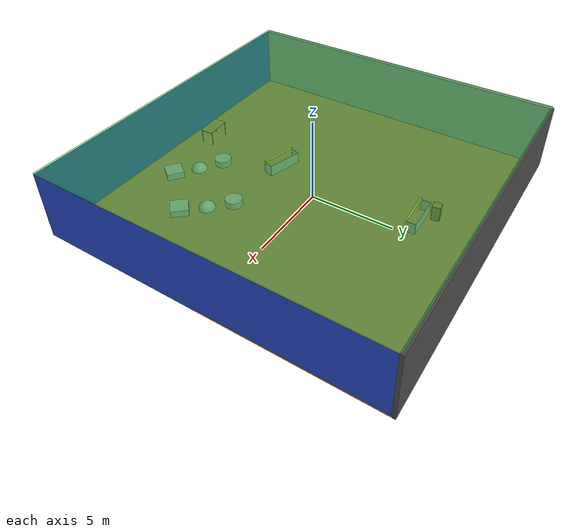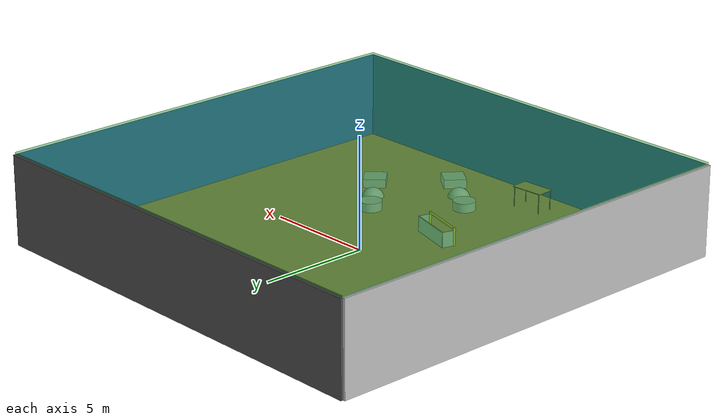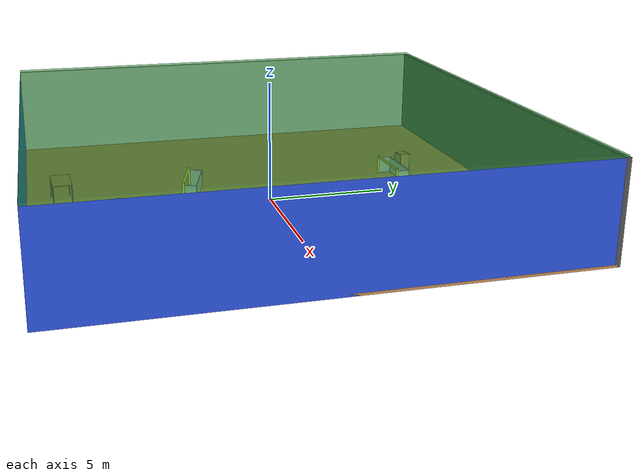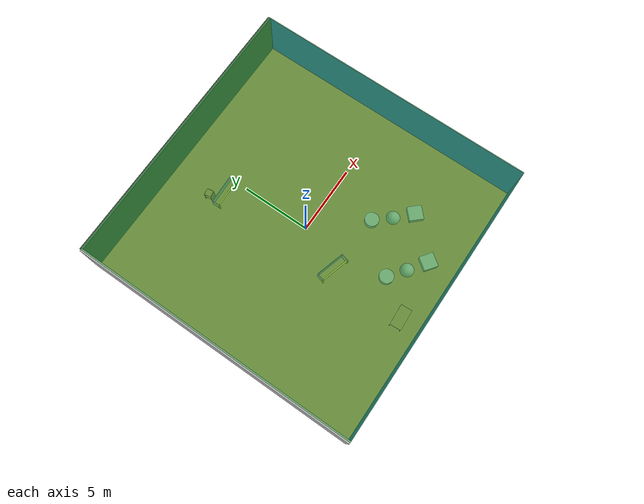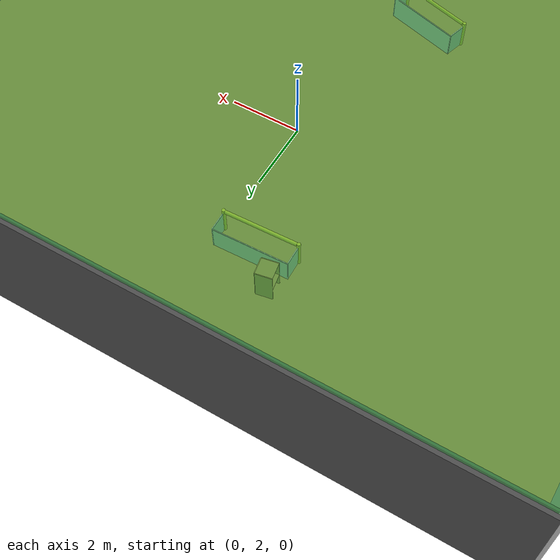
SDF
<sdf version="1.4">
 <world name="default">
  <physics type="ode">
   <max_step_size>0.001</max_step_size>
   <real_time_factor>1</real_time_factor>
   <real_time_update_rate>1000</real_time_update_rate>
   <gravity>0 0 -9.8</gravity>
  </physics>
  <scene><ambient>0.4 0.4 0.4 1</ambient><background>0.7 0.7 0.7 1</background><shadows>1</shadows></scene>
  <model name="Surrounding">
   <static>1</static>
   <link name="Ceiling">
    <collision name="Ceiling_Collision"><geometry><box><size>20 20 0.1</size></box></geometry></collision>
    <visual name="Ceiling_Visual">
     <geometry><box><size>20 20 0.1</size></box></geometry>
     <material>
      <script><uri>file://media/materials/scripts/gazebo.material</uri><name>Gazebo/GreenTransparent</name></script>
     </material>
    </visual>
    <pose>0 0 4.05 0 0 0</pose>
   </link>
   <link name="Wall_South">
    <collision name="Wall_South_Collision">
     <geometry><box><size>20 0 4</size></box></geometry>
     <pose>0 0 2 0 -0 0</pose>
    </collision>
    <visual name="Wall_South_Visual">
     <pose>0 0 2 0 -0 0</pose>
     <geometry><box><size>20 0 4</size></box></geometry>
     <material>
      <script><uri>file://media/materials/scripts/gazebo.material</uri><name>Gazebo/BlueLaser</name></script>
     </material>
    </visual>
    <velocity_decay><linear>0</linear><angular>0</angular></velocity_decay>
    <pose>0 -10 0 0 -0 0</pose>
   </link>
   <link name="Wall_East">
    <collision name="Wall_21_Collision">
     <geometry><box><size>20 0 4</size></box></geometry>
     <pose>0 0 2 0 -0 0</pose>
    </collision>
    <visual name="Wall_21_Visual">
     <pose>0 0 2 0 -0 0</pose>
     <geometry><box><size>20 0 4</size></box></geometry>
     <material>
      <script><uri>file://media/materials/scripts/gazebo.material</uri><name>Gazebo/BlueGlow</name></script>
     </material>
    </visual>
    <velocity_decay><linear>0</linear><angular>0</angular></velocity_decay>
    <pose>10 0 0 0 -0 1.5708</pose>
   </link>
   <link name="Wall_North">
    <collision name="Wall_22_Collision">
     <geometry><box><size>20 0.2 4</size></box></geometry>
     <pose>0 0 2 0 -0 0</pose>
    </collision>
    <visual name="Wall_22_Visual">
     <pose>0 0 2 0 -0 0</pose>
     <geometry><box><size>20 0.2 4</size></box></geometry>
     <material>
      <script><uri>file://media/materials/scripts/gazebo.material</uri><name>Gazebo/Road</name></script>
     </material>
    </visual>
    <velocity_decay><linear>0</linear><angular>0</angular></velocity_decay>
    <pose>0 10 0 0 -0 0</pose>
   </link>
   <link name="Wall_West">
    <collision name="Wall_23_Collision">
     <geometry><box><size>20 0.2 4</size></box></geometry>
     <pose>0 0 2 0 -0 0</pose>
    </collision>
    <visual name="Wall_23_Visual">
     <pose>0 0 2 0 -0 0</pose>
     <geometry><box><size>20 0.2 4</size></box></geometry>
     <material>
      <script><uri>file://media/materials/scripts/gazebo.material</uri><name>Gazebo/CloudySky</name></script>
     </material>
    </visual>
    <velocity_decay><linear>0</linear><angular>0</angular></velocity_decay>
    <pose>-10 0 0 0 0 -1.5708</pose>
   </link>
   <link name="Ground_link">
    <collision name="collision">
     <pose>0 0 .05 0 -0 0</pose>
     <geometry><box><size>20 20 0.1</size></box></geometry>
    </collision>
    <visual name="visual">
     <pose>0 0 .05 0 -0 0</pose>
     <geometry><box><size>20 20 0.1</size></box></geometry>
     <material>
      <script><uri>file://media/materials/scripts/gazebo.material</uri><name>Gazebo/Wood</name></script>
     </material>
    </visual>
   </link>
   <static>1</static>
  </model>
  <spherical_coordinates>
   <surface_model>EARTH_WGS84</surface_model>
   <latitude_deg>0</latitude_deg>
   <longitude_deg>0</longitude_deg>
   <elevation>0</elevation>
   <heading_deg>0</heading_deg>
  </spherical_coordinates>
  <light name="lightball_0" type="diffuse">
   <diffuse>0.8 0.8 0.8 1</diffuse>
   <specular>0.2 0.2 0.2 1</specular>
   <attenuation>
    <range>100</range>
    <constant>0.7</constant>
    <linear>0.01</linear>
    <quadratic>0.001</quadratic>
   </attenuation>
   <direction>-0.5 0.1 -0.9</direction>
   <pose>4.56604057727 -6.40411362368 3.28330056219 0 0 0</pose>
  </light>
  <light name="lightball_1" type="diffuse">
   <diffuse>0.8 0.8 0.8 1</diffuse>
   <specular>0.2 0.2 0.2 1</specular>
   <attenuation>
    <range>100</range>
    <constant>0.7</constant>
    <linear>0.01</linear>
    <quadratic>0.001</quadratic>
   </attenuation>
   <direction>-0.5 0.1 -0.9</direction>
   <pose>-5.41571427149 -2.16780285515 0.887259855863 0 0 0</pose>
  </light>
  <light name="lightball_2" type="diffuse">
   <diffuse>0.8 0.8 0.8 1</diffuse>
   <specular>0.2 0.2 0.2 1</specular>
   <attenuation>
    <range>100</range>
    <constant>0.7</constant>
    <linear>0.01</linear>
    <quadratic>0.001</quadratic>
   </attenuation>
   <direction>-0.5 0.1 -0.9</direction>
   <pose>-0.945022574519 -2.64093937882 2.39004198301 0 0 0</pose>
  </light>
  <light name="lightball_3" type="diffuse">
   <diffuse>0.8 0.8 0.8 1</diffuse>
   <specular>0.2 0.2 0.2 1</specular>
   <attenuation>
    <range>100</range>
    <constant>0.7</constant>
    <linear>0.01</linear>
    <quadratic>0.001</quadratic>
   </attenuation>
   <direction>-0.5 0.1 -0.9</direction>
   <pose>-2.92996847496 -8.58930633972 3.38650804446 0 0 0</pose>
  </light>
  <light name="lightball_4" type="diffuse">
   <diffuse>0.8 0.8 0.8 1</diffuse>
   <specular>0.2 0.2 0.2 1</specular>
   <attenuation>
    <range>100</range>
    <constant>0.7</constant>
    <linear>0.01</linear>
    <quadratic>0.001</quadratic>
   </attenuation>
   <direction>-0.5 0.1 -0.9</direction>
   <pose>-2.35189804736 4.05888513024 1.56646428411 0 0 0</pose>
  </light>
  <light name="lightball_5" type="diffuse">
   <diffuse>0.8 0.8 0.8 1</diffuse>
   <specular>0.2 0.2 0.2 1</specular>
   <attenuation>
    <range>100</range>
    <constant>0.7</constant>
    <linear>0.01</linear>
    <quadratic>0.001</quadratic>
   </attenuation>
   <direction>-0.5 0.1 -0.9</direction>
   <pose>-2.93235293247 -3.74167204089 3.13439879909 0 0 0</pose>
  </light>
  <light name="lightball_6" type="diffuse">
   <diffuse>0.8 0.8 0.8 1</diffuse>
   <specular>0.2 0.2 0.2 1</specular>
   <attenuation>
    <range>100</range>
    <constant>0.7</constant>
    <linear>0.01</linear>
    <quadratic>0.001</quadratic>
   </attenuation>
   <direction>-0.5 0.1 -0.9</direction>
   <pose>0.794217494252 -3.31323637991 1.64809840112 0 0 0</pose>
  </light>
  <light name="lightball_7" type="diffuse">
   <diffuse>0.8 0.8 0.8 1</diffuse>
   <specular>0.2 0.2 0.2 1</specular>
   <attenuation>
    <range>100</range>
    <constant>0.7</constant>
    <linear>0.01</linear>
    <quadratic>0.001</quadratic>
   </attenuation>
   <direction>-0.5 0.1 -0.9</direction>
   <pose>-5.69310799004 -1.6403154251 2.70318217965 0 0 0</pose>
  </light>
  <light name="lightball_8" type="diffuse">
   <diffuse>0.8 0.8 0.8 1</diffuse>
   <specular>0.2 0.2 0.2 1</specular>
   <attenuation>
    <range>100</range>
    <constant>0.7</constant>
    <linear>0.01</linear>
    <quadratic>0.001</quadratic>
   </attenuation>
   <direction>-0.5 0.1 -0.9</direction>
   <pose>3.64845420783 -5.88284678351 1.45883376775 0 0 0</pose>
  </light>
  <light name="lightball_9" type="diffuse">
   <diffuse>0.8 0.8 0.8 1</diffuse>
   <specular>0.2 0.2 0.2 1</specular>
   <attenuation>
    <range>100</range>
    <constant>0.7</constant>
    <linear>0.01</linear>
    <quadratic>0.001</quadratic>
   </attenuation>
   <direction>-0.5 0.1 -0.9</direction>
   <pose>-8.60761343166 -2.68590792871 2.50795349512 0 0 0</pose>
  </light>
  <light name="lightball_10" type="diffuse">
   <diffuse>0.8 0.8 0.8 1</diffuse>
   <specular>0.2 0.2 0.2 1</specular>
   <attenuation>
    <range>100</range>
    <constant>0.7</constant>
    <linear>0.01</linear>
    <quadratic>0.001</quadratic>
   </attenuation>
   <direction>-0.5 0.1 -0.9</direction>
   <pose>5.54236679142 -5.38649939685 0.639537456778 0 0 0</pose>
  </light>
  <light name="lightball_11" type="diffuse">
   <diffuse>0.8 0.8 0.8 1</diffuse>
   <specular>0.2 0.2 0.2 1</specular>
   <attenuation>
    <range>100</range>
    <constant>0.7</constant>
    <linear>0.01</linear>
    <quadratic>0.001</quadratic>
   </attenuation>
   <direction>-0.5 0.1 -0.9</direction>
   <pose>1.70293986623 -3.43680648595 1.96967240719 0 0 0</pose>
  </light>
  <include><uri>model://table</uri><pose>-1.64575131788 -8.56095831575 0 0 0 0.0496904297213</pose></include>
  <include>
   <uri>model://robocup_3Dsim_goal</uri>
   <pose>-1.43091599304 -3.34193171065 0 0 0 1.29126589136</pose>
  </include>
  <include>
   <uri>model://robocup_3Dsim_goal</uri>
   <pose>-1.11656005566 5.69261949408 0 0 0 1.60318484547</pose>
  </include>
  <include><uri>model://cabinet</uri><pose>-1.8996731275 6.69359057251 0 0 0 0.180660008768</pose></include>
  <include>
   <uri>model://textured_shapes</uri>
   <pose>1.45396056734 -7.19522251693 0 0 0 0.944085882525</pose>
  </include>
  <include>
   <uri>model://textured_shapes</uri>
   <pose>4.01197084612 -4.45415056647 0 0 0 0.757270244347</pose>
  </include>
 </world>
</sdf>

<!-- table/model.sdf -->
<sdf version="1.5">
  <model name="table">
    <static>true</static>
    <link name="link">
      <collision name="surface">
        <pose>0 0 1.0 0 0 0</pose>
        <geometry>
          <box>
            <size>1.5 0.8 0.03</size>
          </box>
        </geometry>
        <surface>
          <friction>
            <ode>
              <mu>0.6</mu>
              <mu2>0.6</mu2>
            </ode>
          </friction>
        </surface>
      </collision>
      <visual name="visual1">
        <pose>0 0 1.0 0 0 0</pose>
        <geometry>
          <box>
            <size>1.5 0.8 0.03</size>
          </box>
        </geometry>
        <material>
          <script>
            <uri>model://media/materials/scripts/gazebo.material</uri>
            <name>Gazebo/Wood</name>
          </script>
        </material>
      </visual>
      <collision name="front_left_leg">
        <pose>0.68 0.38 0.5 0 0 0</pose>
        <geometry>
          <cylinder>
            <radius>0.02</radius>
            <length>1.0</length>
          </cylinder>
        </geometry>
      </collision>
      <visual name="front_left_leg">
        <pose>0.68 0.38 0.5 0 0 0</pose>
        <geometry>
          <cylinder>
            <radius>0.02</radius>
            <length>1.0</length>
          </cylinder>
        </geometry>
        <material>
          <script>
            <uri>model://media/materials/scripts/gazebo.material</uri>
            <name>Gazebo/Grey</name>
          </script>
        </material>
      </visual>
      <collision name="front_right_leg">
        <pose>0.68 -0.38 0.5 0 0 0</pose>
        <geometry>
          <cylinder>
            <radius>0.02</radius>
            <length>1.0</length>
          </cylinder>
        </geometry>
      </collision>
      <visual name="front_right_leg">
        <pose>0.68 -0.38 0.5 0 0 0</pose>
        <geometry>
          <cylinder>
            <radius>0.02</radius>
            <length>1.0</length>
          </cylinder>
        </geometry>
        <material>
          <script>
            <uri>model://media/materials/scripts/gazebo.material</uri>
            <name>Gazebo/Grey</name>
          </script>
        </material>
      </visual>
      <collision name="back_right_leg">
        <pose>-0.68 -0.38 0.5 0 0 0</pose>
        <geometry>
          <cylinder>
            <radius>0.02</radius>
            <length>1.0</length>
          </cylinder>
        </geometry>
      </collision>
      <visual name="back_right_leg">
        <pose>-0.68 -0.38 0.5 0 0 0</pose>
        <geometry>
          <cylinder>
            <radius>0.02</radius>
            <length>1.0</length>
          </cylinder>
        </geometry>
        <material>
          <script>
            <uri>model://media/materials/scripts/gazebo.material</uri>
            <name>Gazebo/Grey</name>
          </script>
        </material>
      </visual>
      <collision name="back_left_leg">
        <pose>-0.68 0.38 0.5 0 0 0</pose>
        <geometry>
          <cylinder>
            <radius>0.02</radius>
            <length>1.0</length>
          </cylinder>
        </geometry>
      </collision>
      <visual name="back_left_leg">
        <pose>-0.68 0.38 0.5 0 0 0</pose>
        <geometry>
          <cylinder>
            <radius>0.02</radius>
            <length>1.0</length>
          </cylinder>
        </geometry>
        <material>
          <script>
            <uri>model://media/materials/scripts/gazebo.material</uri>
            <name>Gazebo/Grey</name>
          </script>
        </material>
      </visual>
    </link>
  </model>
</sdf>

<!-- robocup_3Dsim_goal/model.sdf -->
<sdf version="1.5">
  <model name="robocup_3d_goal">
    <static>true</static>
    <link name="left_post">
      <pose>0 1.05 0.45 0 0 0</pose>
      <collision name="collision">
        <geometry>
          <cylinder>
            <radius>0.05</radius>
            <length>0.9</length>
          </cylinder>
        </geometry>
      </collision>
      <visual name="visual">
        <geometry>
          <cylinder>
            <radius>0.05</radius>
            <length>0.9</length>
          </cylinder>
        </geometry>
        <material>
          <script>
            <uri>file://media/materials/scripts/gazebo.material</uri>
            <name>Gazebo/ZincYellow</name>
          </script>
        </material>
      </visual>
    </link>
    <link name="left_support_horiz_lower">
      <pose>0.30 1.05 0.01 0 0 0</pose>
      <collision name="collision">
        <geometry>
          <box>
            <size>0.50 0.02 0.02</size>
          </box>
        </geometry>
      </collision>
      <visual name="visual">
        <geometry>
          <box>
            <size>0.50 0.02 0.02</size>
          </box>
        </geometry>
        <material>
          <script>
            <uri>file://media/materials/scripts/gazebo.material</uri>
            <name>Gazebo/White</name>
          </script>
        </material>
      </visual>
    </link>
    <link name="left_support_horiz_upper">
      <pose>0.30 1.05 0.79 0 0 0</pose>
      <collision name="collision">
        <geometry>
          <box>
            <size>0.50 0.02 0.02</size>
          </box>
        </geometry>
      </collision>
      <visual name="visual">
        <geometry>
          <box>
            <size>0.50 0.02 0.02</size>
          </box>
        </geometry>
        <material>
          <script>
            <uri>file://media/materials/scripts/gazebo.material</uri>
            <name>Gazebo/White</name>
          </script>
        </material>
      </visual>
    </link>
    <link name="left_support_vertical">
      <pose>0.56 1.05 0.4 0 1.5708 0</pose>
      <collision name="collision">
        <geometry>
          <box>
            <size>0.80 0.02 0.02</size>
          </box>
        </geometry>
      </collision>
      <visual name="visual">
        <geometry>
          <box>
            <size>0.80 0.02 0.02</size>
          </box>
        </geometry>
        <material>
          <script>
            <uri>file://media/materials/scripts/gazebo.material</uri>
            <name>Gazebo/White</name>
          </script>
        </material>
      </visual>
    </link>
    <link name="right_support_horiz_lower">
      <pose>0.30 -1.05 0.01 0 0 0</pose>
      <collision name="collision">
        <geometry>
          <box>
            <size>0.50 0.02 0.02</size>
          </box>
        </geometry>
      </collision>
      <visual name="visual">
        <geometry>
          <box>
            <size>0.50 0.02 0.02</size>
          </box>
        </geometry>
        <material>
          <script>
            <uri>file://media/materials/scripts/gazebo.material</uri>
            <name>Gazebo/White</name>
          </script>
        </material>
      </visual>
    </link>
    <link name="right_support_horiz_upper">
      <pose>0.30 -1.05 0.79 0 0 0</pose>
      <collision name="collision">
        <geometry>
          <box>
            <size>0.50 0.02 0.02</size>
          </box>
        </geometry>
      </collision>
      <visual name="visual">
        <geometry>
          <box>
            <size>0.50 0.02 0.02</size>
          </box>
        </geometry>
        <material>
          <script>
            <uri>file://media/materials/scripts/gazebo.material</uri>
            <name>Gazebo/White</name>
          </script>
        </material>
      </visual>
    </link>
    <link name="right_support_vertical">
      <pose>0.56 -1.05 0.4 0 1.5708 0</pose>
      <collision name="collision">
        <geometry>
          <box>
            <size>0.80 0.02 0.02</size>
          </box>
        </geometry>
      </collision>
      <visual name="visual">
        <geometry>
          <box>
            <size>0.80 0.02 0.02</size>
          </box>
        </geometry>
        <material>
          <script>
            <uri>file://media/materials/scripts/gazebo.material</uri>
            <name>Gazebo/White</name>
          </script>
        </material>
      </visual>
    </link>
    <link name="center_support_horiz_lower">
      <pose>0.56 0 0.01 0 1.5708 0</pose>
      <collision name="collision">
        <geometry>
          <box>
            <size>0.02 2.08 0.02</size>
          </box>
        </geometry>
      </collision>
      <visual name="visual">
        <geometry>
          <box>
            <size>0.02 2.08 0.02</size>
          </box>
        </geometry>
        <material>
          <script>
            <uri>file://media/materials/scripts/gazebo.material</uri>
            <name>Gazebo/White</name>
          </script>
        </material>
      </visual>
    </link>
    <link name="center_support_horiz_upper">
      <pose>0.56 0 0.79 0 1.5708 0</pose>
      <collision name="collision">
        <geometry>
          <box>
            <size>0.02 2.08 0.02</size>
          </box>
        </geometry>
      </collision>
      <visual name="visual">
        <geometry>
          <box>
            <size>0.02 2.08 0.02</size>
          </box>
        </geometry>
        <material>
          <script>
            <uri>file://media/materials/scripts/gazebo.material</uri>
            <name>Gazebo/White</name>
          </script>
        </material>
      </visual>
    </link>
    <link name="right_post">
      <pose>0 -1.05 0.45 0 0 0</pose>
      <collision name="collision">
        <geometry>
          <cylinder>
            <radius>0.05</radius>
            <length>0.9</length>
          </cylinder>
        </geometry>
      </collision>
      <visual name="visual">
        <geometry>
          <cylinder>
            <radius>0.05</radius>
            <length>0.9</length>
          </cylinder>
        </geometry>
        <material>
          <script>
            <uri>file://media/materials/scripts/gazebo.material</uri>
            <name>Gazebo/ZincYellow</name>
          </script>
        </material>
      </visual>
    </link>
    <link name="crossbar">
      <pose>0 0 0.85 1.57 1.57 0</pose>
      <collision name="collision">
        <geometry>
          <cylinder>
            <radius>0.05</radius>
            <length>2.0</length>
          </cylinder>
        </geometry>
      </collision>
      <visual name="visual">
        <geometry>
          <cylinder>
            <radius>0.05</radius>
            <length>2.0</length>
          </cylinder>
        </geometry>
        <material>
          <script>
            <uri>file://media/materials/scripts/gazebo.material</uri>
            <name>Gazebo/ZincYellow</name>
          </script>
        </material>
      </visual>
    </link>
    <link name="center_net">
      <pose>0.56 0 0.40 0 0 0</pose>
      <collision name="collision">
        <geometry>
          <box>
            <size>0.01 2.1 0.80</size>
          </box>
        </geometry>
      </collision>
      <visual name="visual">
        <geometry>
          <box>
            <size>0.01 2.1 0.80</size>
          </box>
        </geometry>
        <material>
          <script>
            <uri>model://../model_source/models/robocup09_spl_field/materials/scripts/</uri>
            <uri>model://../model_source/models/robocup09_spl_field/materials/textures/</uri>
            <name>RoboCup/Net</name>
          </script>
        </material>
      </visual>
    </link>
    <link name="left_net">
      <pose>0.30 1.05 0.40 0 0 0</pose>
      <collision name="collision">
        <geometry>
          <box>
            <size>0.50 0.01 0.76</size>
          </box>
        </geometry>
      </collision>
      <visual name="visual">
        <geometry>
          <box>
            <size>0.50 0.01 0.76</size>
          </box>
        </geometry>
        <material>
          <script>
            <uri>model://../model_source/models/robocup09_spl_field/materials/scripts/</uri>
            <uri>model://../model_source/models/robocup09_spl_field/materials/textures/</uri>
            <name>RoboCup/Net</name>
          </script>
        </material>
      </visual>
    </link>
    <link name="right_net">
      <pose>0.30 -1.05 0.40 0 0 0</pose>
      <collision name="collision">
        <geometry>
          <box>
            <size>0.50 0.01 0.76</size>
          </box>
        </geometry>
      </collision>
      <visual name="visual">
        <geometry>
          <box>
            <size>0.50 0.01 0.76</size>
          </box>
        </geometry>
        <material>
          <script>
            <uri>model://../model_source/models/robocup09_spl_field/materials/scripts/</uri>
            <uri>model://../model_source/models/robocup09_spl_field/materials/textures/</uri>
            <name>RoboCup/Net</name>
          </script>
        </material>
      </visual>
    </link>
  </model>
</sdf>

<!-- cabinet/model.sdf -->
<sdf version="1.5">
  <model name="cabinet">
    <static>true</static>
    <link name="cabinet_bottom_plate">
      <inertial>
        <pose>0 0 -1 0 0 0</pose>
        <inertia>
          <ixx>2.050000</ixx>
          <ixy>0</ixy>
          <ixz>0</ixz>
          <iyy>2.050000</iyy>
          <iyz>0</iyz>
          <izz>2.050000</izz>
        </inertia>
        <mass>25.000000</mass>
      </inertial>
      <collision name="cabinet_bottom_plate_geom">
        <pose>0 0 0.010000 0 0 0</pose>
        <geometry>
          <box>
            <size>0.450000 0.450000 0.020000</size>
          </box>
        </geometry>
      </collision>
      <visual name="cabinet_bottom_plate_geom_visual">
        <pose>0 0 0.010000 0 0 0</pose>
        <geometry>
          <box>
            <size>0.450000 0.450000 0.020000</size>
          </box>
        </geometry>
        <material>
          <script>
            <uri>model://media/materials/scripts/gazebo.material</uri>
            <name>Gazebo/Wood</name>
          </script>
        </material>
      </visual>
      <collision name="cabinet_bottom_plate_geom_cabinet_back_plate">
        <pose>0.235000 0 0.510000 0 0 0</pose>
        <geometry>
          <box>
            <size>0.020000 0.450000 1.020000</size>
          </box>
        </geometry>
      </collision>
      <visual name="cabinet_bottom_plate_geom_cabinet_back_plate_visual">
        <pose>0.235000 0 0.510000 0 0 0</pose>
        <geometry>
          <box>
            <size>0.020000 0.450000 1.020000</size>
          </box>
        </geometry>
        <material>
          <script>
            <uri>model://media/materials/scripts/gazebo.material</uri>
            <name>Gazebo/Wood</name>
          </script>
        </material>
      </visual>
      <collision name="cabinet_bottom_plate_geom_cabinet_left_plate">
        <pose>0 0.235000 0.510000 0 0 0</pose>
        <geometry>
          <box>
            <size>0.450000 0.020000 1.020000</size>
          </box>
        </geometry>
      </collision>
      <visual name="cabinet_bottom_plate_geom_cabinet_left_plate_visual">
        <pose>0 0.235000 0.510000 0 0 0</pose>
        <geometry>
          <box>
            <size>0.450000 0.020000 1.020000</size>
          </box>
        </geometry>
        <material>
          <script>
            <uri>model://media/materials/scripts/gazebo.material</uri>
            <name>Gazebo/Wood</name>
          </script>
        </material>
      </visual>
      <collision name="cabinet_bottom_plate_geom_cabinet_middle_plate">
        <pose>0 0 0.510000 0 0 0</pose>
        <geometry>
          <box>
            <size>0.450000 0.450000 0.020000</size>
          </box>
        </geometry>
      </collision>
      <visual name="cabinet_bottom_plate_geom_cabinet_middle_plate_visual">
        <pose>0 0 0.510000 0 0 0</pose>
        <geometry>
          <box>
            <size>0.450000 0.450000 0.020000</size>
          </box>
        </geometry>
        <material>
          <script>
            <uri>model://media/materials/scripts/gazebo.material</uri>
            <name>Gazebo/Wood</name>
          </script>
        </material>
      </visual>
      <collision name="cabinet_bottom_plate_geom_cabinet_right_plate">
        <pose>0 -0.235000 0.510000 0 0 0</pose>
        <geometry>
          <box>
            <size>0.450000 0.020000 1.020000</size>
          </box>
        </geometry>
      </collision>
      <visual name="cabinet_bottom_plate_geom_cabinet_right_plate_visual">
        <pose>0 -0.235000 0.510000 0 0 0</pose>
        <geometry>
          <box>
            <size>0.450000 0.020000 1.020000</size>
          </box>
        </geometry>
        <material>
          <script>
            <uri>model://media/materials/scripts/gazebo.material</uri>
            <name>Gazebo/Wood</name>
          </script>
        </material>
      </visual>
      <collision name="cabinet_bottom_plate_geom_cabinet_top_plate">
        <pose>0 0 1.010000 0 0 0</pose>
        <geometry>
          <box>
            <size>0.450000 0.450000 0.020000</size>
          </box>
        </geometry>
      </collision>
      <visual name="cabinet_bottom_plate_geom_cabinet_top_plate_visual">
        <pose>0 0 1.010000 0 0 0</pose>
        <geometry>
          <box>
            <size>0.450000 0.450000 0.020000</size>
          </box>
        </geometry>
        <material>
          <script>
            <uri>model://media/materials/scripts/gazebo.material</uri>
            <name>Gazebo/Wood</name>
          </script>
        </material>
      </visual>
    </link>
  </model>
</sdf>

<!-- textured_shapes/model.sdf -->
<sdf version="1.6">
  <model name="textured_shapes">
    <pose>0 0 0.5 0 0 0</pose>
    <link name="box">
      <pose>0 -1.5 0 0 0 0</pose>
      <collision name="collision">
        <geometry>
          <box>
            <size>1 1 1</size>
          </box>
        </geometry>
      </collision>
      <visual name="visual">
        <geometry>
          <box>
            <size>1 1 1</size>
          </box>
        </geometry>
        <material>
          <script>
            <uri>model://../model_source/models/textured_shapes/materials/scripts</uri>
            <uri>model://../model_source/models/textured_shapes/materials/textures</uri>
            <name>TexturedShape/Squares</name>
          </script>
        </material>
      </visual>
    </link>
    <link name="sphere">
      <collision name="collision">
        <geometry>
          <sphere>
            <radius>0.5</radius>
          </sphere>
        </geometry>
      </collision>
      <visual name="visual">
        <geometry>
          <sphere>
            <radius>0.5</radius>
          </sphere>
        </geometry>
        <material>
          <script>
            <uri>model://../model_source/models/textured_shapes/materials/scripts</uri>
            <uri>model://../model_source/models/textured_shapes/materials/textures</uri>
            <name>TexturedShape/Squares</name>
          </script>
        </material>
      </visual>
    </link>
    <link name="cylinder">
      <pose>0 1.5 0 0 0 0</pose>
      <collision name="collision">
        <geometry>
          <cylinder>
            <radius>0.5</radius>
            <length>1</length>
          </cylinder>
        </geometry>
      </collision>
      <visual name="visual">
        <geometry>
          <cylinder>
            <radius>0.5</radius>
            <length>1</length>
          </cylinder>
        </geometry>
        <material>
          <script>
            <uri>model://../model_source/models/textured_shapes/materials/scripts</uri>
            <uri>model://../model_source/models/textured_shapes/materials/textures</uri>
            <name>TexturedShape/Squares</name>
          </script>
        </material>
      </visual>
    </link>
  </model>
</sdf>
